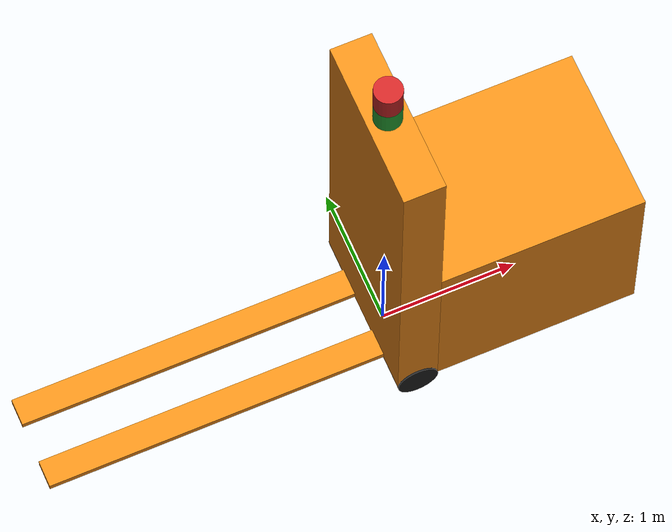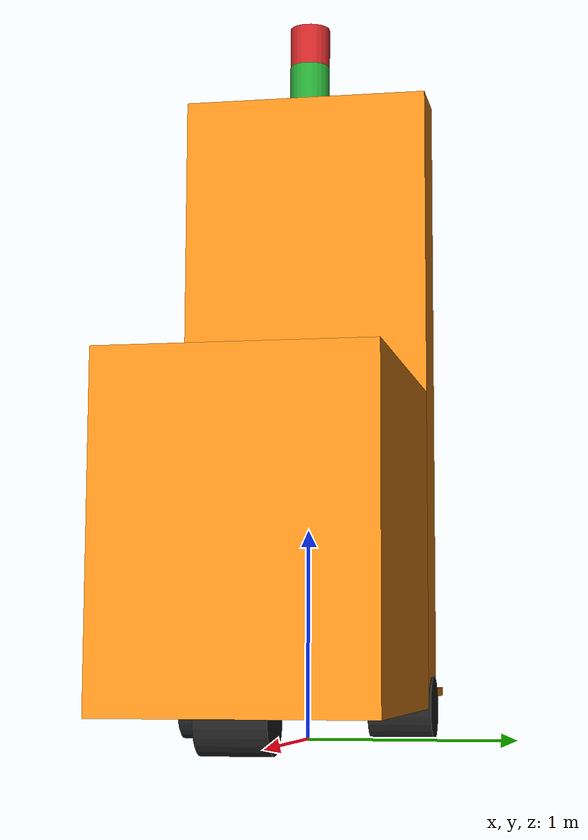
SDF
<?xml version='1.0'?>
<sdf version='1.7'>
  <model name='AGV'>
    <link name='agv_CoordSys'>
      <inertial>
        <pose>0 0 0.15 0 -0 0</pose>
        <mass>100</mass>
        <inertia>
          <ixx>60</ixx>
          <ixy>0</ixy>
          <ixz>0</ixz>
          <iyy>60</iyy>
          <iyz>0</iyz>
          <izz>60</izz>
        </inertia>
      </inertial>
      <velocity_decay/>
      <velocity_decay/>
      <sensor name='lidar2D_sensor' type='ray'>
        <visualize>0</visualize>
        <update_rate>10</update_rate>
        <ray>
          <noise>
            <type>gaussian</type>
            <mean>0</mean>
            <stddev>0.05</stddev>
          </noise>
          <scan>
            <horizontal>
              <samples>360</samples>
              <resolution>1</resolution>
              <min_angle>0</min_angle>
              <max_angle>6.28318</max_angle>
            </horizontal>
            <vertical>
              <samples>1</samples>
              <min_angle>0</min_angle>
              <max_angle>0</max_angle>
            </vertical>
          </scan>
          <range>
            <min>1</min>
            <max>30</max>
            <resolution>0.02</resolution>
          </range>
        </ray>
        <plugin name='lidar2D_plugin' filename='libgazebo_ros_laser.so'>
          <topicName>/AGV_Gazebo/lidar2D/scan</topicName>
          <frameName>map</frameName>
          <robotNamespace>/</robotNamespace>
        </plugin>
        <pose>0 0 3.45 0 -0 0</pose>
      </sensor>
      <gravity>1</gravity>
      <velocity_decay/>
      <sensor name='lidar3D_sensor' type='ray'>
        <visualize>0</visualize>
        <update_rate>10</update_rate>
        <ray>
          <noise>
            <type>gaussian</type>
            <mean>0</mean>
            <stddev>0.1</stddev>
          </noise>
          <scan>
            <horizontal>
              <samples>60</samples>
              <resolution>1</resolution>
              <min_angle>-1</min_angle>
              <max_angle>1</max_angle>
            </horizontal>
            <vertical>
              <samples>8</samples>
              <resolution>1</resolution>
              <min_angle>-0.5</min_angle>
              <max_angle>0.5</max_angle>
            </vertical>
          </scan>
          <range>
            <min>1</min>
            <max>30</max>
            <resolution>0.02</resolution>
          </range>
        </ray>
        <plugin name='lidar3D_plugin' filename='libgazebo_ros_velodyne_laser.so'>
          <topicName>/AGV_Gazebo/lidar3D/pointcloud2</topicName>
          <frameName>map</frameName>
          <robotNamespace>/</robotNamespace>
        </plugin>
        <pose>0 0 3.25 0 -0 0</pose>
      </sensor>
      <self_collide>0</self_collide>
      <enable_wind>0</enable_wind>
      <kinematic>0</kinematic>
      <pose>0 0 0 0 -0 0</pose>
      <visual name='agv_CoordSys_fixed_joint_lump__lidar3D_visual_5'>
        <pose>0 0 3.25 0 -0 0</pose>
        <geometry>
          <cylinder>
            <length>0.2</length>
            <radius>0.1</radius>
          </cylinder>
        </geometry>
        <material>
          <script>
            <name>Gazebo/Green</name>
            <uri>file://media/materials/scripts/gazebo.material</uri>
          </script>
          <shader type='pixel'/>
        </material>
        <transparency>0</transparency>
        <cast_shadows>1</cast_shadows>
      </visual>
      <visual name='agv_CoordSys_fixed_joint_lump__chassis_visual_1'>
        <pose>0.9 0 0.9 0 -0 0</pose>
        <geometry>
          <box>
            <size>1.5 1.2 1.5</size>
          </box>
        </geometry>
        <material>
          <script>
            <name>Gazebo/Orange</name>
            <uri>file://media/materials/scripts/gazebo.material</uri>
          </script>
          <shader type='pixel'/>
        </material>
        <transparency>0</transparency>
        <cast_shadows>1</cast_shadows>
      </visual>
      <visual name='agv_CoordSys_fixed_joint_lump__chassis_visual'>
        <pose>0 0 1.65 0 -0 0</pose>
        <geometry>
          <box>
            <size>0.3 1.2 3</size>
          </box>
        </geometry>
        <material>
          <script>
            <name>Gazebo/Orange</name>
            <uri>file://media/materials/scripts/gazebo.material</uri>
          </script>
          <shader type='pixel'/>
        </material>
        <transparency>0</transparency>
        <cast_shadows>1</cast_shadows>
      </visual>
      <visual name='agv_CoordSys_fixed_joint_lump__chassis_visual_2'>
        <pose>-1.4 0.25 0.175 0 -0 0</pose>
        <geometry>
          <box>
            <size>2.5 0.2 0.05</size>
          </box>
        </geometry>
        <material>
          <script>
            <name>Gazebo/Orange</name>
            <uri>file://media/materials/scripts/gazebo.material</uri>
          </script>
          <shader type='pixel'/>
        </material>
        <transparency>0</transparency>
        <cast_shadows>1</cast_shadows>
      </visual>
      <visual name='agv_CoordSys_fixed_joint_lump__chassis_visual_3'>
        <pose>-1.4 -0.25 0.175 0 -0 0</pose>
        <geometry>
          <box>
            <size>2.5 0.2 0.05</size>
          </box>
        </geometry>
        <material>
          <script>
            <name>Gazebo/Orange</name>
            <uri>file://media/materials/scripts/gazebo.material</uri>
          </script>
          <shader type='pixel'/>
        </material>
        <transparency>0</transparency>
        <cast_shadows>1</cast_shadows>
      </visual>
      <visual name='agv_CoordSys_fixed_joint_lump__lidar2D_visual_4'>
        <pose>0 0 3.45 0 -0 0</pose>
        <geometry>
          <cylinder>
            <length>0.2</length>
            <radius>0.1</radius>
          </cylinder>
        </geometry>
        <material>
          <script>
            <name>Gazebo/Red</name>
            <uri>file://media/materials/scripts/gazebo.material</uri>
          </script>
          <shader type='pixel'/>
        </material>
        <transparency>0</transparency>
        <cast_shadows>1</cast_shadows>
      </visual>
      <collision name='agv_CoordSys_fixed_joint_lump__chassis_collision_1'>
        <laser_retro>0</laser_retro>
        <max_contacts>10</max_contacts>
        <pose>0.9 0 0.9 0 -0 0</pose>
        <geometry>
          <box>
            <size>1.5 1.2 1.5</size>
          </box>
        </geometry>
        <surface>
          <friction>
            <ode>
              <mu>1</mu>
              <mu2>1</mu2>
              <fdir1>0 0 0</fdir1>
              <slip1>0</slip1>
              <slip2>0</slip2>
            </ode>
            <torsional>
              <coefficient>1</coefficient>
              <patch_radius>0</patch_radius>
              <surface_radius>0</surface_radius>
              <use_patch_radius>1</use_patch_radius>
              <ode>
                <slip>0</slip>
              </ode>
            </torsional>
          </friction>
          <bounce>
            <restitution_coefficient>0</restitution_coefficient>
            <threshold>1e+06</threshold>
          </bounce>
          <contact>
            <collide_without_contact>0</collide_without_contact>
            <collide_without_contact_bitmask>1</collide_without_contact_bitmask>
            <collide_bitmask>1</collide_bitmask>
            <ode>
              <soft_cfm>0</soft_cfm>
              <soft_erp>0.2</soft_erp>
              <kp>1e+13</kp>
              <kd>1</kd>
              <max_vel>0.01</max_vel>
              <min_depth>0</min_depth>
            </ode>
            <bullet>
              <split_impulse>1</split_impulse>
              <split_impulse_penetration_threshold>-0.01</split_impulse_penetration_threshold>
              <soft_cfm>0</soft_cfm>
              <soft_erp>0.2</soft_erp>
              <kp>1e+13</kp>
              <kd>1</kd>
            </bullet>
          </contact>
        </surface>
      </collision>
      <collision name='agv_CoordSys_fixed_joint_lump__chassis_collision_3'>
        <laser_retro>0</laser_retro>
        <max_contacts>10</max_contacts>
        <pose>-1.4 -0.25 0.175 0 -0 0</pose>
        <geometry>
          <box>
            <size>2.5 0.2 0.05</size>
          </box>
        </geometry>
        <surface>
          <friction>
            <ode>
              <mu>1</mu>
              <mu2>1</mu2>
              <fdir1>0 0 0</fdir1>
              <slip1>0</slip1>
              <slip2>0</slip2>
            </ode>
            <torsional>
              <coefficient>1</coefficient>
              <patch_radius>0</patch_radius>
              <surface_radius>0</surface_radius>
              <use_patch_radius>1</use_patch_radius>
              <ode>
                <slip>0</slip>
              </ode>
            </torsional>
          </friction>
          <bounce>
            <restitution_coefficient>0</restitution_coefficient>
            <threshold>1e+06</threshold>
          </bounce>
          <contact>
            <collide_without_contact>0</collide_without_contact>
            <collide_without_contact_bitmask>1</collide_without_contact_bitmask>
            <collide_bitmask>1</collide_bitmask>
            <ode>
              <soft_cfm>0</soft_cfm>
              <soft_erp>0.2</soft_erp>
              <kp>1e+13</kp>
              <kd>1</kd>
              <max_vel>0.01</max_vel>
              <min_depth>0</min_depth>
            </ode>
            <bullet>
              <split_impulse>1</split_impulse>
              <split_impulse_penetration_threshold>-0.01</split_impulse_penetration_threshold>
              <soft_cfm>0</soft_cfm>
              <soft_erp>0.2</soft_erp>
              <kp>1e+13</kp>
              <kd>1</kd>
            </bullet>
          </contact>
        </surface>
      </collision>
      <collision name='agv_CoordSys_fixed_joint_lump__lidar3D_collision_5'>
        <laser_retro>0</laser_retro>
        <max_contacts>10</max_contacts>
        <pose>0 0 3.25 0 -0 0</pose>
        <geometry>
          <cylinder>
            <radius>0.1</radius>
            <length>0.2</length>
          </cylinder>
        </geometry>
        <surface>
          <friction>
            <ode>
              <mu>1</mu>
              <mu2>1</mu2>
              <fdir1>0 0 0</fdir1>
              <slip1>0</slip1>
              <slip2>0</slip2>
            </ode>
            <torsional>
              <coefficient>1</coefficient>
              <patch_radius>0</patch_radius>
              <surface_radius>0</surface_radius>
              <use_patch_radius>1</use_patch_radius>
              <ode>
                <slip>0</slip>
              </ode>
            </torsional>
          </friction>
          <bounce>
            <restitution_coefficient>0</restitution_coefficient>
            <threshold>1e+06</threshold>
          </bounce>
          <contact>
            <collide_without_contact>0</collide_without_contact>
            <collide_without_contact_bitmask>1</collide_without_contact_bitmask>
            <collide_bitmask>1</collide_bitmask>
            <ode>
              <soft_cfm>0</soft_cfm>
              <soft_erp>0.2</soft_erp>
              <kp>1e+13</kp>
              <kd>1</kd>
              <max_vel>0.01</max_vel>
              <min_depth>0</min_depth>
            </ode>
            <bullet>
              <split_impulse>1</split_impulse>
              <split_impulse_penetration_threshold>-0.01</split_impulse_penetration_threshold>
              <soft_cfm>0</soft_cfm>
              <soft_erp>0.2</soft_erp>
              <kp>1e+13</kp>
              <kd>1</kd>
            </bullet>
          </contact>
        </surface>
      </collision>
      <collision name='agv_CoordSys_fixed_joint_lump__chassis_collision_2'>
        <laser_retro>0</laser_retro>
        <max_contacts>10</max_contacts>
        <pose>-1.4 0.25 0.175 0 -0 0</pose>
        <geometry>
          <box>
            <size>2.5 0.2 0.05</size>
          </box>
        </geometry>
        <surface>
          <friction>
            <ode>
              <mu>1</mu>
              <mu2>1</mu2>
              <fdir1>0 0 0</fdir1>
              <slip1>0</slip1>
              <slip2>0</slip2>
            </ode>
            <torsional>
              <coefficient>1</coefficient>
              <patch_radius>0</patch_radius>
              <surface_radius>0</surface_radius>
              <use_patch_radius>1</use_patch_radius>
              <ode>
                <slip>0</slip>
              </ode>
            </torsional>
          </friction>
          <bounce>
            <restitution_coefficient>0</restitution_coefficient>
            <threshold>1e+06</threshold>
          </bounce>
          <contact>
            <collide_without_contact>0</collide_without_contact>
            <collide_without_contact_bitmask>1</collide_without_contact_bitmask>
            <collide_bitmask>1</collide_bitmask>
            <ode>
              <soft_cfm>0</soft_cfm>
              <soft_erp>0.2</soft_erp>
              <kp>1e+13</kp>
              <kd>1</kd>
              <max_vel>0.01</max_vel>
              <min_depth>0</min_depth>
            </ode>
            <bullet>
              <split_impulse>1</split_impulse>
              <split_impulse_penetration_threshold>-0.01</split_impulse_penetration_threshold>
              <soft_cfm>0</soft_cfm>
              <soft_erp>0.2</soft_erp>
              <kp>1e+13</kp>
              <kd>1</kd>
            </bullet>
          </contact>
        </surface>
      </collision>
      <collision name='agv_CoordSys_fixed_joint_lump__lidar2D_collision_4'>
        <laser_retro>0</laser_retro>
        <max_contacts>10</max_contacts>
        <pose>0 0 3.45 0 -0 0</pose>
        <geometry>
          <cylinder>
            <radius>0.1</radius>
            <length>0.2</length>
          </cylinder>
        </geometry>
        <surface>
          <friction>
            <ode>
              <mu>1</mu>
              <mu2>1</mu2>
              <fdir1>0 0 0</fdir1>
              <slip1>0</slip1>
              <slip2>0</slip2>
            </ode>
            <torsional>
              <coefficient>1</coefficient>
              <patch_radius>0</patch_radius>
              <surface_radius>0</surface_radius>
              <use_patch_radius>1</use_patch_radius>
              <ode>
                <slip>0</slip>
              </ode>
            </torsional>
          </friction>
          <bounce>
            <restitution_coefficient>0</restitution_coefficient>
            <threshold>1e+06</threshold>
          </bounce>
          <contact>
            <collide_without_contact>0</collide_without_contact>
            <collide_without_contact_bitmask>1</collide_without_contact_bitmask>
            <collide_bitmask>1</collide_bitmask>
            <ode>
              <soft_cfm>0</soft_cfm>
              <soft_erp>0.2</soft_erp>
              <kp>1e+13</kp>
              <kd>1</kd>
              <max_vel>0.01</max_vel>
              <min_depth>0</min_depth>
            </ode>
            <bullet>
              <split_impulse>1</split_impulse>
              <split_impulse_penetration_threshold>-0.01</split_impulse_penetration_threshold>
              <soft_cfm>0</soft_cfm>
              <soft_erp>0.2</soft_erp>
              <kp>1e+13</kp>
              <kd>1</kd>
            </bullet>
          </contact>
        </surface>
      </collision>
      <collision name='agv_CoordSys_fixed_joint_lump__chassis_collision'>
        <laser_retro>0</laser_retro>
        <max_contacts>10</max_contacts>
        <pose>0 0 1.65 0 -0 0</pose>
        <geometry>
          <box>
            <size>0.3 1.2 3</size>
          </box>
        </geometry>
        <surface>
          <friction>
            <ode>
              <mu>1</mu>
              <mu2>1</mu2>
              <fdir1>0 0 0</fdir1>
              <slip1>0</slip1>
              <slip2>0</slip2>
            </ode>
            <torsional>
              <coefficient>1</coefficient>
              <patch_radius>0</patch_radius>
              <surface_radius>0</surface_radius>
              <use_patch_radius>1</use_patch_radius>
              <ode>
                <slip>0</slip>
              </ode>
            </torsional>
          </friction>
          <bounce>
            <restitution_coefficient>0</restitution_coefficient>
            <threshold>1e+06</threshold>
          </bounce>
          <contact>
            <collide_without_contact>0</collide_without_contact>
            <collide_without_contact_bitmask>1</collide_without_contact_bitmask>
            <collide_bitmask>1</collide_bitmask>
            <ode>
              <soft_cfm>0</soft_cfm>
              <soft_erp>0.2</soft_erp>
              <kp>1e+13</kp>
              <kd>1</kd>
              <max_vel>0.01</max_vel>
              <min_depth>0</min_depth>
            </ode>
            <bullet>
              <split_impulse>1</split_impulse>
              <split_impulse_penetration_threshold>-0.01</split_impulse_penetration_threshold>
              <soft_cfm>0</soft_cfm>
              <soft_erp>0.2</soft_erp>
              <kp>1e+13</kp>
              <kd>1</kd>
            </bullet>
          </contact>
        </surface>
      </collision>
    </link>
    <link name='wheelC'>
      <pose>1.5 -1e-06 0.15 1.5708 -0 0</pose>
      <inertial>
        <pose>0 0 0 0 -0 0</pose>
        <mass>1</mass>
        <inertia>
          <ixx>0.0145833</ixx>
          <ixy>0</ixy>
          <ixz>0</ixz>
          <iyy>0.0145833</iyy>
          <iyz>0</iyz>
          <izz>0.0125</izz>
        </inertia>
      </inertial>
      <gravity>1</gravity>
      <velocity_decay/>
      <self_collide>0</self_collide>
      <enable_wind>0</enable_wind>
      <kinematic>0</kinematic>
      <visual name='wheelC_visual'>
        <pose>0 0 0 0 -0 0</pose>
        <geometry>
          <cylinder>
            <length>0.3</length>
            <radius>0.15</radius>
          </cylinder>
        </geometry>
        <material>
          <script>
            <name>Gazebo/Black</name>
            <uri>file://media/materials/scripts/gazebo.material</uri>
          </script>
          <shader type='pixel'/>
        </material>
        <transparency>0</transparency>
        <cast_shadows>1</cast_shadows>
      </visual>
      <collision name='wheelC_collision'>
        <laser_retro>0</laser_retro>
        <max_contacts>10</max_contacts>
        <pose>0 0 0 0 -0 0</pose>
        <geometry>
          <cylinder>
            <radius>0.15</radius>
            <length>0.3</length>
          </cylinder>
        </geometry>
        <surface>
          <friction>
            <ode>
              <mu>1</mu>
              <mu2>1</mu2>
              <fdir1>0 0 0</fdir1>
              <slip1>0</slip1>
              <slip2>0</slip2>
            </ode>
            <torsional>
              <coefficient>1</coefficient>
              <patch_radius>0</patch_radius>
              <surface_radius>0</surface_radius>
              <use_patch_radius>1</use_patch_radius>
              <ode>
                <slip>0</slip>
              </ode>
            </torsional>
          </friction>
          <bounce>
            <restitution_coefficient>0</restitution_coefficient>
            <threshold>1e+06</threshold>
          </bounce>
          <contact>
            <collide_without_contact>0</collide_without_contact>
            <collide_without_contact_bitmask>1</collide_without_contact_bitmask>
            <collide_bitmask>1</collide_bitmask>
            <ode>
              <soft_cfm>0</soft_cfm>
              <soft_erp>0.2</soft_erp>
              <kp>1e+13</kp>
              <kd>1</kd>
              <max_vel>0.01</max_vel>
              <min_depth>0</min_depth>
            </ode>
            <bullet>
              <split_impulse>1</split_impulse>
              <split_impulse_penetration_threshold>-0.01</split_impulse_penetration_threshold>
              <soft_cfm>0</soft_cfm>
              <soft_erp>0.2</soft_erp>
              <kp>1e+13</kp>
              <kd>1</kd>
            </bullet>
          </contact>
        </surface>
      </collision>
    </link>
    <link name='wheelL'>
      <pose>0 0.459999 0.15 1.5708 -0 0</pose>
      <inertial>
        <pose>0 0 0 0 -0 0</pose>
        <mass>1</mass>
        <inertia>
          <ixx>0.0145833</ixx>
          <ixy>0</ixy>
          <ixz>0</ixz>
          <iyy>0.0145833</iyy>
          <iyz>0</iyz>
          <izz>0.0125</izz>
        </inertia>
      </inertial>
      <gravity>1</gravity>
      <velocity_decay/>
      <self_collide>0</self_collide>
      <enable_wind>0</enable_wind>
      <kinematic>0</kinematic>
      <visual name='wheelL_visual'>
        <pose>0 0 0 0 -0 0</pose>
        <geometry>
          <cylinder>
            <length>0.3</length>
            <radius>0.15</radius>
          </cylinder>
        </geometry>
        <material>
          <script>
            <name>Gazebo/Black</name>
            <uri>file://media/materials/scripts/gazebo.material</uri>
          </script>
          <shader type='pixel'/>
        </material>
        <transparency>0</transparency>
        <cast_shadows>1</cast_shadows>
      </visual>
      <collision name='wheelL_collision'>
        <laser_retro>0</laser_retro>
        <max_contacts>10</max_contacts>
        <pose>0 0 0 0 -0 0</pose>
        <geometry>
          <cylinder>
            <radius>0.15</radius>
            <length>0.3</length>
          </cylinder>
        </geometry>
        <surface>
          <friction>
            <ode>
              <mu>1</mu>
              <mu2>1</mu2>
              <fdir1>0 0 0</fdir1>
              <slip1>0</slip1>
              <slip2>0</slip2>
            </ode>
            <torsional>
              <coefficient>1</coefficient>
              <patch_radius>0</patch_radius>
              <surface_radius>0</surface_radius>
              <use_patch_radius>1</use_patch_radius>
              <ode>
                <slip>0</slip>
              </ode>
            </torsional>
          </friction>
          <bounce>
            <restitution_coefficient>0</restitution_coefficient>
            <threshold>1e+06</threshold>
          </bounce>
          <contact>
            <collide_without_contact>0</collide_without_contact>
            <collide_without_contact_bitmask>1</collide_without_contact_bitmask>
            <collide_bitmask>1</collide_bitmask>
            <ode>
              <soft_cfm>0</soft_cfm>
              <soft_erp>0.2</soft_erp>
              <kp>1e+13</kp>
              <kd>1</kd>
              <max_vel>0.01</max_vel>
              <min_depth>0</min_depth>
            </ode>
            <bullet>
              <split_impulse>1</split_impulse>
              <split_impulse_penetration_threshold>-0.01</split_impulse_penetration_threshold>
              <soft_cfm>0</soft_cfm>
              <soft_erp>0.2</soft_erp>
              <kp>1e+13</kp>
              <kd>1</kd>
            </bullet>
          </contact>
        </surface>
      </collision>
    </link>
    <link name='wheelR'>
      <pose>-0 -0.459999 0.15 1.5708 -0 0</pose>
      <inertial>
        <pose>0 0 0 0 -0 0</pose>
        <mass>1</mass>
        <inertia>
          <ixx>0.0145833</ixx>
          <ixy>0</ixy>
          <ixz>0</ixz>
          <iyy>0.0145833</iyy>
          <iyz>0</iyz>
          <izz>0.0125</izz>
        </inertia>
      </inertial>
      <gravity>1</gravity>
      <velocity_decay/>
      <self_collide>0</self_collide>
      <enable_wind>0</enable_wind>
      <kinematic>0</kinematic>
      <visual name='wheelR_visual'>
        <pose>0 0 0 0 -0 0</pose>
        <geometry>
          <cylinder>
            <length>0.3</length>
            <radius>0.15</radius>
          </cylinder>
        </geometry>
        <material>
          <script>
            <name>Gazebo/Black</name>
            <uri>file://media/materials/scripts/gazebo.material</uri>
          </script>
          <shader type='pixel'/>
        </material>
        <transparency>0</transparency>
        <cast_shadows>1</cast_shadows>
      </visual>
      <collision name='wheelR_collision'>
        <laser_retro>0</laser_retro>
        <max_contacts>10</max_contacts>
        <pose>0 0 0 0 -0 0</pose>
        <geometry>
          <cylinder>
            <radius>0.15</radius>
            <length>0.3</length>
          </cylinder>
        </geometry>
        <surface>
          <friction>
            <ode>
              <mu>1</mu>
              <mu2>1</mu2>
              <fdir1>0 0 0</fdir1>
              <slip1>0</slip1>
              <slip2>0</slip2>
            </ode>
            <torsional>
              <coefficient>1</coefficient>
              <patch_radius>0</patch_radius>
              <surface_radius>0</surface_radius>
              <use_patch_radius>1</use_patch_radius>
              <ode>
                <slip>0</slip>
              </ode>
            </torsional>
          </friction>
          <bounce>
            <restitution_coefficient>0</restitution_coefficient>
            <threshold>1e+06</threshold>
          </bounce>
          <contact>
            <collide_without_contact>0</collide_without_contact>
            <collide_without_contact_bitmask>1</collide_without_contact_bitmask>
            <collide_bitmask>1</collide_bitmask>
            <ode>
              <soft_cfm>0</soft_cfm>
              <soft_erp>0.2</soft_erp>
              <kp>1e+13</kp>
              <kd>1</kd>
              <max_vel>0.01</max_vel>
              <min_depth>0</min_depth>
            </ode>
            <bullet>
              <split_impulse>1</split_impulse>
              <split_impulse_penetration_threshold>-0.01</split_impulse_penetration_threshold>
              <soft_cfm>0</soft_cfm>
              <soft_erp>0.2</soft_erp>
              <kp>1e+13</kp>
              <kd>1</kd>
            </bullet>
          </contact>
        </surface>
      </collision>
    </link>
    <joint name='chassis_wheelC_joint' type='revolute'>
      <parent>agv_CoordSys</parent>
      <child>wheelC</child>
      <pose>0 0 -0 0 -0 0</pose>
      <axis>
        <xyz>0 0 1</xyz>
        <limit>
          <lower>-1e+16</lower>
          <upper>1e+16</upper>
          <effort>-1</effort>
          <velocity>-1</velocity>
        </limit>
        <dynamics>
          <spring_reference>0</spring_reference>
          <spring_stiffness>0</spring_stiffness>
          <damping>0</damping>
          <friction>0</friction>
        </dynamics>
      </axis>
      <physics>
        <ode>
          <limit>
            <cfm>0</cfm>
            <erp>0.2</erp>
          </limit>
          <suspension>
            <cfm>0</cfm>
            <erp>0.2</erp>
          </suspension>
        </ode>
      </physics>
    </joint>
    <joint name='chassis_wheelL_joint' type='revolute'>
      <parent>agv_CoordSys</parent>
      <child>wheelL</child>
      <pose>0 0 -0 0 -0 0</pose>
      <axis>
        <xyz>0 0 1</xyz>
        <limit>
          <lower>-1e+16</lower>
          <upper>1e+16</upper>
          <effort>-1</effort>
          <velocity>-1</velocity>
        </limit>
        <dynamics>
          <spring_reference>0</spring_reference>
          <spring_stiffness>0</spring_stiffness>
          <damping>0</damping>
          <friction>0</friction>
        </dynamics>
      </axis>
      <physics>
        <ode>
          <limit>
            <cfm>0</cfm>
            <erp>0.2</erp>
          </limit>
          <suspension>
            <cfm>0</cfm>
            <erp>0.2</erp>
          </suspension>
        </ode>
      </physics>
    </joint>
    <joint name='chassis_wheelR_joint' type='revolute'>
      <parent>agv_CoordSys</parent>
      <child>wheelR</child>
      <pose>0 -0 0 0 -0 0</pose>
      <axis>
        <xyz>0 0 1</xyz>
        <limit>
          <lower>-1e+16</lower>
          <upper>1e+16</upper>
          <effort>-1</effort>
          <velocity>-1</velocity>
        </limit>
        <dynamics>
          <spring_reference>0</spring_reference>
          <spring_stiffness>0</spring_stiffness>
          <damping>0</damping>
          <friction>0</friction>
        </dynamics>
      </axis>
      <physics>
        <ode>
          <limit>
            <cfm>0</cfm>
            <erp>0.2</erp>
          </limit>
          <suspension>
            <cfm>0</cfm>
            <erp>0.2</erp>
          </suspension>
        </ode>
      </physics>
    </joint>
    <static>0</static>
    <allow_auto_disable>1</allow_auto_disable>
  </model>
</sdf>
